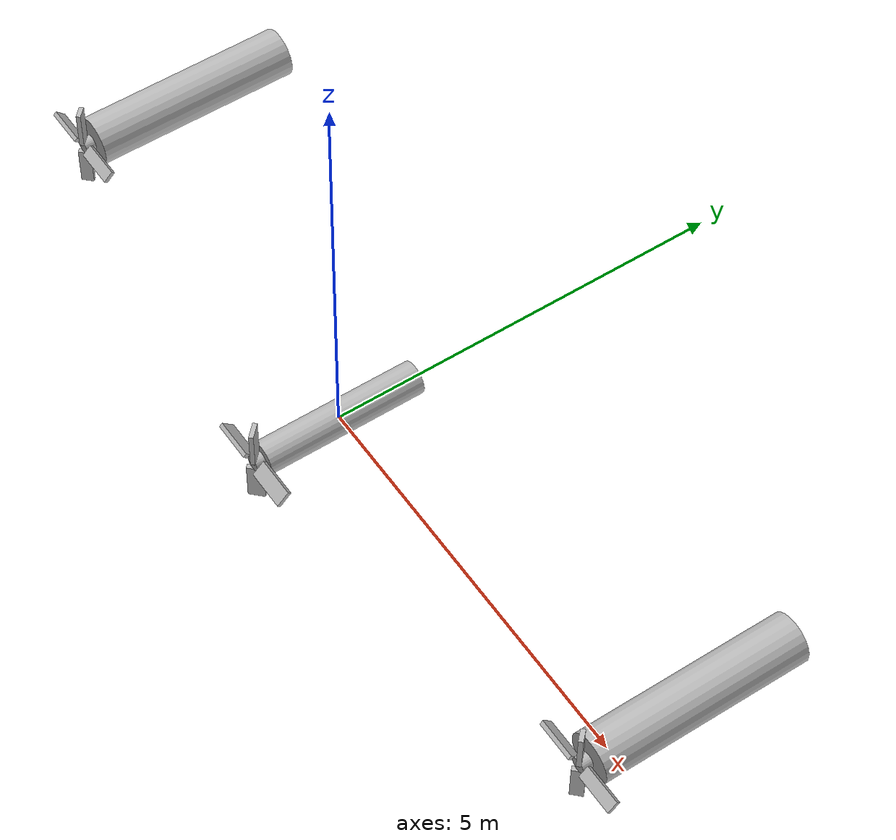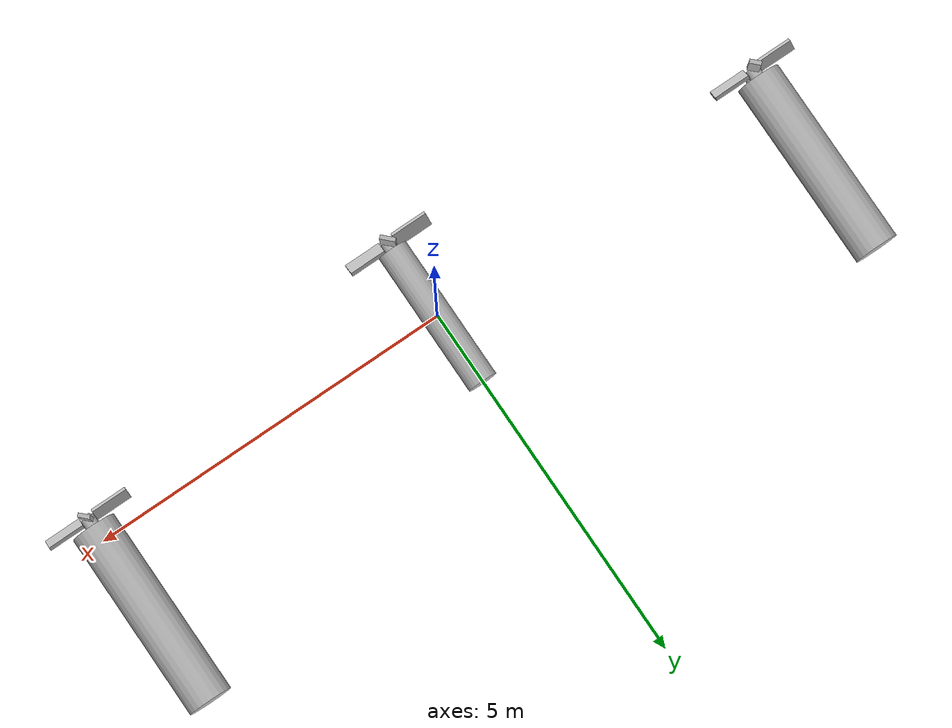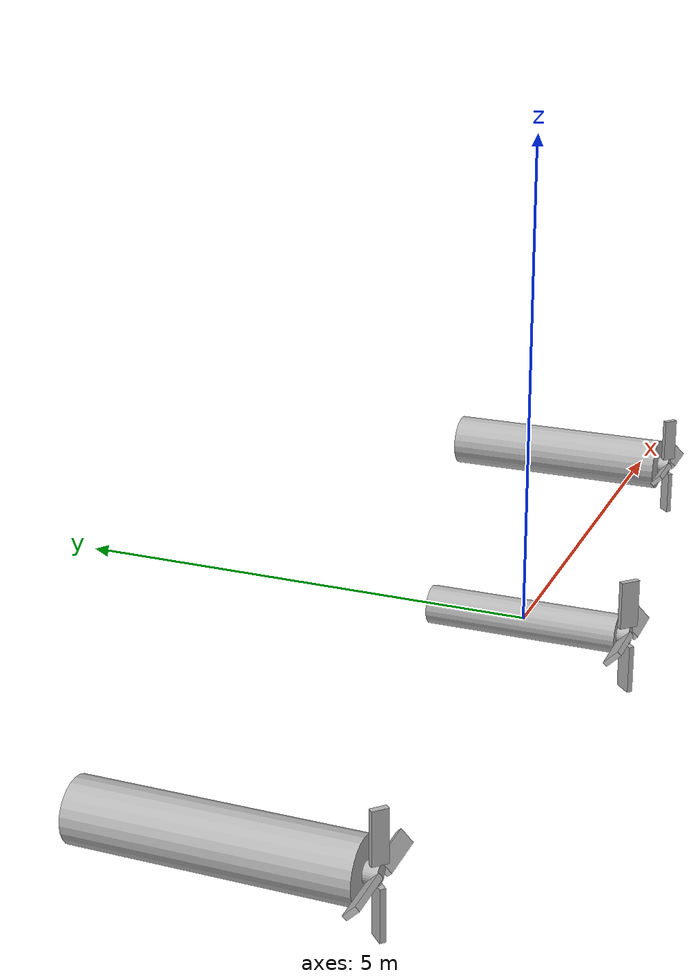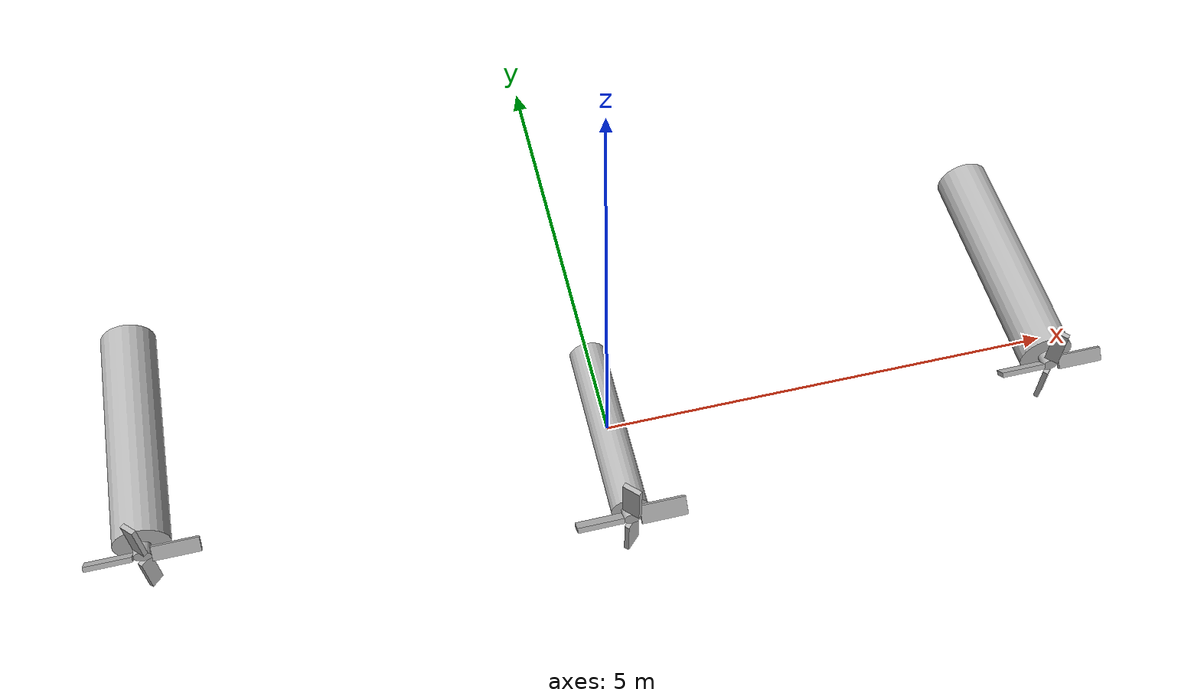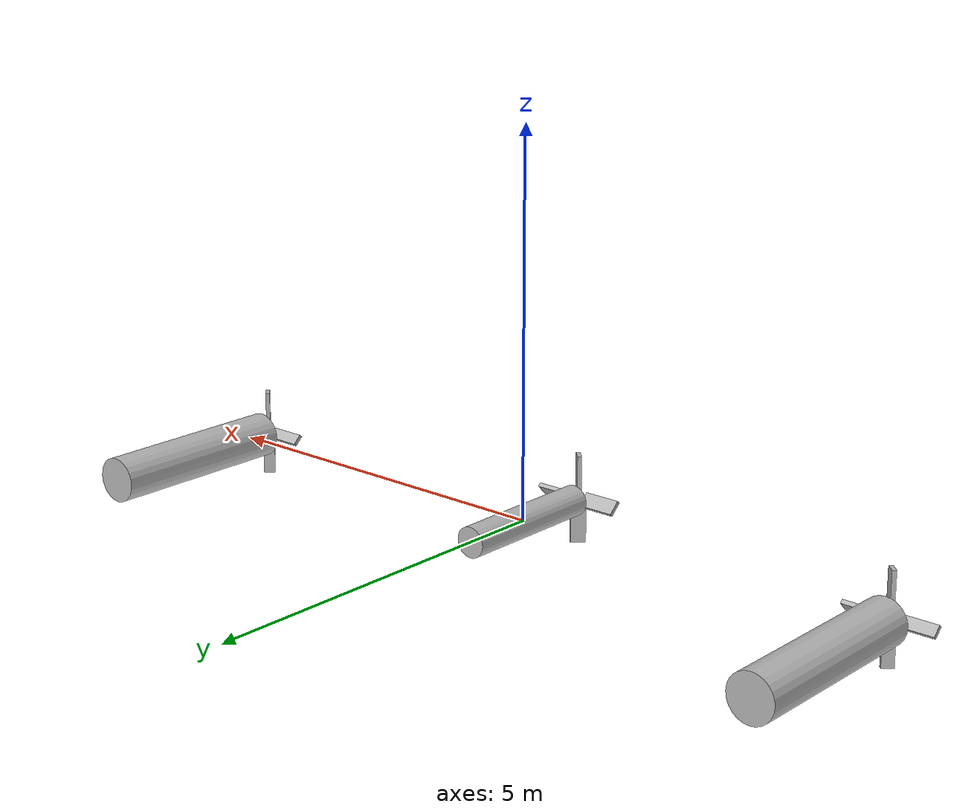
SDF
<?xml version="1.0" ?>
<sdf version="1.6">
  <world name="buoyancy">
    <plugin
      filename="gz-sim-apply-link-wrench-system"
      name="gz::sim::systems::ApplyLinkWrench">
    </plugin>

    <physics name="1ms" type="ode">
      <max_step_size>0.001</max_step_size>
      <real_time_factor>1.0</real_time_factor>
    </physics>
    <plugin
      filename="gz-sim-physics-system"
      name="gz::sim::systems::Physics">
    </plugin>
    <plugin
      filename="gz-sim-user-commands-system"
      name="gz::sim::systems::UserCommands">
    </plugin>
    <plugin
      filename="gz-sim-scene-broadcaster-system"
      name="gz::sim::systems::SceneBroadcaster">
    </plugin>
    <plugin
      filename="gz-sim-buoyancy-system"
      name="gz::sim::systems::Buoyancy">
      <uniform_fluid_density>1000</uniform_fluid_density>
    </plugin>

    <light type="directional" name="sun">
      <cast_shadows>true</cast_shadows>
      <pose>0 0 10 0 0 0</pose>
      <diffuse>1 1 1 1</diffuse>
      <specular>0.5 0.5 0.5 1</specular>
      <attenuation>
        <range>1000</range>
        <constant>0.9</constant>
        <linear>0.01</linear>
        <quadratic>0.001</quadratic>
      </attenuation>
      <direction>-0.5 0.1 -0.9</direction>
    </light>

    <model name='submarine'>
      <pose>0 0 0 1.5707963267948966 0 0</pose>
      <link name='body'>
        <pose>0 0 0 0 0 0</pose>
        <inertial>
          <mass>251.32741228718348</mass>
          <inertia>
            <ixx>86.28907821859966</ixx>
            <ixy>0</ixy>
            <ixz>0</ixz>
            <iyy>86.28907821859966</iyy>
            <iyz>0</iyz>
            <izz>5.026548245743671</izz>
          </inertia>
        </inertial>

        <visual name='body_visual'>
          <geometry>
            <cylinder>
              <radius>0.2</radius>
              <length>2</length>
            </cylinder>
          </geometry>
        </visual>
        <collision name='body_collision'>
          <geometry>
            <cylinder>
              <radius>0.2</radius>
              <length>2</length>
            </cylinder>
          </geometry>
        </collision>

        <visual name='spacer_visual'>
          <pose>0 0 1.05855 0 0 0</pose>
          <geometry>
            <cylinder>
              <radius>0.0933402</radius>
              <length>0.127211</length>
            </cylinder>
          </geometry>
        </visual>
      </link>

      <link name='propeller'>
        <pose>0 0 1.09 3.14159 0 0</pose>
        <inertial>
          <mass>21.820000000000004</mass>
          <inertia>
            <ixx>0.45999415237916674</ixx>
            <ixy>0</ixy>
            <ixz>0</ixz>
            <iyy>0.45999415237916674</iyy>
            <iyz>0</iyz>
            <izz>0.9091666666666668</izz>
          </inertia>
        </inertial>

        <visual name="blade1_visual">
          <pose>0.3433402 0.0 0 -0.7853981633974483 0 0.0</pose>
          <geometry>
            <box>
              <size>0.5 0.2 0.05455</size>
            </box>
          </geometry>
        </visual>
        <collision name="blade1_collision">
          <pose>0.3433402 0.0 0 -0.7853981633974483 0 0.0</pose>
          <geometry>
            <box>
              <size>0.5 0.2 0.05455</size>
            </box>
          </geometry>
        </collision>

        <visual name="blade2_visual">
          <pose>0.0 0.3433402 0 -0.7853981633974483 0 1.5707963267948966</pose>
          <geometry>
            <box>
              <size>0.5 0.2 0.05455</size>
            </box>
          </geometry>
        </visual>
        <collision name="blade2_collision">
          <pose>0.0 0.3433402 0 -0.7853981633974483 0 1.5707963267948966</pose>
          <geometry>
            <box>
              <size>0.5 0.2 0.05455</size>
            </box>
          </geometry>
        </collision>

        <visual name="blade3_visual">
          <pose>-0.3433402 -0.0 0 0.7853981633974483 0 0.0</pose>
          <geometry>
            <box>
              <size>0.5 0.2 0.05455</size>
            </box>
          </geometry>
        </visual>
        <collision name="blade3_collision">
          <pose>-0.3433402 -0.0 0 0.7853981633974483 0 0.0</pose>
          <geometry>
            <box>
              <size>0.5 0.2 0.05455</size>
            </box>
          </geometry>
        </collision>

        <visual name="blade4_visual">
          <pose>-0.0 -0.3433402 0 0.7853981633974483 0 1.5707963267948966</pose>
          <geometry>
            <box>
              <size>0.5 0.2 0.05455</size>
            </box>
          </geometry>
        </visual>
        <collision name="blade4_collision">
          <pose>-0.0 -0.3433402 0 0.7853981633974483 0 1.5707963267948966</pose>
          <geometry>
            <box>
              <size>0.5 0.2 0.05455</size>
            </box>
          </geometry>
        </collision>

      </link>

      <joint name='propeller_joint' type='revolute'>
        <parent>body</parent>
        <child>propeller</child>
        <axis>
          <xyz>0 0 1</xyz>
          <use_parent_model_frame>1</use_parent_model_frame>
          <limit>
            <lower>-1e+12</lower>
            <upper>1e+12</upper>
            <effort>-1</effort>
            <velocity>-1</velocity>
          </limit>
        </axis>
      </joint>

      <plugin
        filename="gz-sim-apply-joint-force-system"
        name="gz::sim::systems::ApplyJointForce">
        <joint_name>propeller_joint</joint_name>
      </plugin>

      <plugin
        filename="gz-sim-lift-drag-system"
        name="gz::sim::systems::LiftDrag">
        <air_density>1000</air_density>
        <cla>1.2535816618911175</cla>
        <cla_stall>-1.4326647564469914</cla_stall>
        <cda>0</cda>
        <cda_stall>1.4326647564469914</cda_stall>
        <alpha_stall>1.396</alpha_stall>
        <a0>0</a0>
        <area>0.27637</area>
        <upward>0 -0.7071067811865476 -0.7071067811865475</upward>
        <forward>0 -0.7071067811865475 0.7071067811865476</forward>
        <link_name>propeller</link_name>
        <cp>0.35 0 0</cp>
      </plugin>

      <plugin
        filename="gz-sim-lift-drag-system"
        name="gz::sim::systems::LiftDrag">
        <air_density>1000</air_density>
        <cla>1.2535816618911175</cla>
        <cla_stall>-1.4326647564469914</cla_stall>
        <cda>0</cda>
        <cda_stall>1.4326647564469914</cda_stall>
        <alpha_stall>1.396</alpha_stall>
        <a0>0</a0>
        <area>0.27637</area>
        <upward>-0.7071067811865475 0 -0.7071067811865476</upward>
        <forward>-0.7071067811865476 0 0.7071067811865475</forward>
        <link_name>propeller</link_name>
        <cp>0 -0.35 0</cp>
      </plugin>

      <plugin
        filename="gz-sim-lift-drag-system"
        name="gz::sim::systems::LiftDrag">

        <air_density>1000</air_density>
        <cla>1.2535816618911175</cla>
        <cla_stall>-1.4326647564469914</cla_stall>
        <cda>0</cda>
        <cda_stall>1.4326647564469914</cda_stall>
        <alpha_stall>1.396</alpha_stall>
        <a0>0</a0>
        <area>0.27637</area>
        <upward>0 0.7071067811865475 -0.7071067811865476</upward>
        <forward>0 -0.7071067811865476 -0.7071067811865475</forward>
        <link_name>propeller</link_name>
        <cp>-0.35 0 0</cp>
      </plugin>

      <plugin
        filename="gz-sim-lift-drag-system"
        name="gz::sim::systems::LiftDrag">

        <air_density>1000</air_density>
        <cla>1.2535816618911175</cla>
        <cla_stall>-1.4326647564469914</cla_stall>
        <cda>0</cda>
        <cda_stall>1.4326647564469914</cda_stall>
        <alpha_stall>1.396</alpha_stall>
        <a0>0</a0>
        <area>0.27637</area>
        <upward>0.7071067811865476 0 -0.7071067811865475</upward>
        <forward>0.7071067811865475 0 0.7071067811865476</forward>
        <link_name>propeller</link_name>
        <cp>0 0.35 0</cp>
      </plugin>
    </model>

    <!-- This model should sink -->
    <model name='submarine_sinking'>
      <pose>5 0 0 1.5707963267948966 0 0</pose>
      <link name='body'>
        <pose>0 0 -1.07935 0 0 0</pose>
        <inertial>
          <mass>1102.6990214100174</mass>
          <inertia>
            <ixx>645.9978433760353</ixx>
            <ixy>0</ixy>
            <ixz>0</ixz>
            <iyy>645.9978433760353</iyy>
            <iyz>0</iyz>
            <izz>49.62145596345078</izz>
          </inertia>
        </inertial>

        <visual name='body_visual'>
          <geometry>
            <cylinder>
              <radius>0.3</radius>
              <length>2.6</length>
            </cylinder>
          </geometry>
        </visual>
        <collision name='body_collision'>
          <geometry>
            <cylinder>
              <radius>0.3</radius>
              <length>2.6</length>
            </cylinder>
          </geometry>
        </collision>

        <visual name='spacer_visual'>
          <pose>0 0 1.378546 0 0 0</pose>
          <geometry>
            <cylinder>
              <radius>0.0933402</radius>
              <length>0.127211</length>
            </cylinder>
          </geometry>
        </visual>
      </link>

      <link name='propeller'>
        <pose>0 0 0.3455 3.14159 0 0</pose>
        <inertial>
          <mass>25.2312297</mass>
          <inertia>
            <ixx>0.5319073381913637</ixx>
            <ixy>0</ixy>
            <ixz>0</ixz>
            <iyy>0.5319073381913637</iyy>
            <iyz>0</iyz>
            <izz>1.0513012375</izz>
          </inertia>
        </inertial>

        <visual name="blade1_visual">
          <pose>0.3433402 0.0 0 -0.7853981633974483 0 0.0</pose>
          <geometry>
            <box>
              <size>0.5 0.154178 0.05455</size>
            </box>
          </geometry>
        </visual>
        <collision name="blade1_collision">
          <pose>0.3433402 0.0 0 -0.7853981633974483 0 0.0</pose>
          <geometry>
            <box>
              <size>0.5 0.154178 0.05455</size>
            </box>
          </geometry>
        </collision>

        <visual name="blade2_visual">
          <pose>0.0 0.3433402 0 -0.7853981633974483 0 1.5707963267948966</pose>
          <geometry>
            <box>
              <size>0.5 0.154178 0.05455</size>
            </box>
          </geometry>
        </visual>
        <collision name="blade2_collision">
          <pose>0.0 0.3433402 0 -0.7853981633974483 0 1.5707963267948966</pose>
          <geometry>
            <box>
              <size>0.5 0.154178 0.05455</size>
            </box>
          </geometry>
        </collision>

        <visual name="blade3_visual">
          <pose>-0.3433402 -0.0 0 0.7853981633974483 0 0.0</pose>
          <geometry>
            <box>
              <size>0.5 0.154178 0.05455</size>
            </box>
          </geometry>
        </visual>
        <collision name="blade3_collision">
          <pose>-0.3433402 -0.0 0 0.7853981633974483 0 0.0</pose>
          <geometry>
            <box>
              <size>0.5 0.154178 0.05455</size>
            </box>
          </geometry>
        </collision>

        <visual name="blade4_visual">
          <pose>-0.0 -0.3433402 0 0.7853981633974483 0 1.5707963267948966</pose>
          <geometry>
            <box>
              <size>0.5 0.154178 0.05455</size>
            </box>
          </geometry>
        </visual>
        <collision name="blade4_collision">
          <pose>-0.0 -0.3433402 0 -0.7853981633974483 0 1.5707963267948966</pose>
          <geometry>
            <box>
              <size>0.5 0.154178 0.05455</size>
            </box>
          </geometry>
        </collision>

      </link>

      <joint name='propeller_joint' type='revolute'>
        <parent>body</parent>
        <child>propeller</child>
        <axis>
          <xyz>0 0 1</xyz>
          <use_parent_model_frame>1</use_parent_model_frame>
          <limit>
            <lower>-1e+12</lower>
            <upper>1e+12</upper>
            <effort>-1</effort>
            <velocity>-1</velocity>
          </limit>
        </axis>
      </joint>
    </model>

    <!-- This model should float up -->
    <model name='submarine_buoyant'>
      <pose>-5 0 0 1.5707963267948966 0 0</pose>
      <link name='body'>
        <pose>0 0 -1.07935 0 0 0</pose>
        <inertial>
          <mass>367.5663404700058</mass>
          <inertia>
            <ixx>215.33261445867842</ixx>
            <ixy>0</ixy>
            <ixz>0</ixz>
            <iyy>215.33261445867842</iyy>
            <iyz>0</iyz>
            <izz>16.54048532115026</izz>
          </inertia>
        </inertial>

        <visual name='body_visual'>
          <geometry>
            <cylinder>
              <radius>0.3</radius>
              <length>2.6</length>
            </cylinder>
          </geometry>
        </visual>
        <collision name='body_collision'>
          <geometry>
            <cylinder>
              <radius>0.3</radius>
              <length>2.6</length>
            </cylinder>
          </geometry>
        </collision>

        <visual name='spacer_visual'>
          <pose>0 0 1.378546 0 0 0</pose>
          <geometry>
            <cylinder>
              <radius>0.0933402</radius>
              <length>0.127211</length>
            </cylinder>
          </geometry>
        </visual>
      </link>

      <link name='propeller'>
        <pose>0 0 0.3455 3.14159 0 0</pose>
        <inertial>
          <mass>8.410409900000001</mass>
          <inertia>
            <ixx>0.17730244606378792</ixx>
            <ixy>0</ixy>
            <ixz>0</ixz>
            <iyy>0.17730244606378792</iyy>
            <iyz>0</iyz>
            <izz>0.35043374583333337</izz>
          </inertia>
        </inertial>

        <visual name="blade1_visual">
          <pose>0.3433402 0.0 0 -0.7853981633974483 0 0.0</pose>
          <geometry>
            <box>
              <size>0.5 0.154178 0.05455</size>
            </box>
          </geometry>
        </visual>
        <collision name="blade1_collision">
          <pose>0.3433402 0.0 0 -0.7853981633974483 0 0.0</pose>
          <geometry>
            <box>
              <size>0.5 0.154178 0.05455</size>
            </box>
          </geometry>
        </collision>

        <visual name="blade2_visual">
          <pose>0.0 0.3433402 0 -0.7853981633974483 0 1.5707963267948966</pose>
          <geometry>
            <box>
              <size>0.5 0.154178 0.05455</size>
            </box>
          </geometry>
        </visual>
        <collision name="blade2_collision">
          <pose>0.0 0.3433402 0 -0.7853981633974483 0 1.5707963267948966</pose>
          <geometry>
            <box>
              <size>0.5 0.154178 0.05455</size>
            </box>
          </geometry>
        </collision>

        <visual name="blade3_visual">
          <pose>-0.3433402 -0.0 0 0.7853981633974483 0 0.0</pose>
          <geometry>
            <box>
              <size>0.5 0.154178 0.05455</size>
            </box>
          </geometry>
        </visual>
        <collision name="blade3_collision">
          <pose>-0.3433402 -0.0 0 0.7853981633974483 0 0.0</pose>
          <geometry>
            <box>
              <size>0.5 0.154178 0.05455</size>
            </box>
          </geometry>
        </collision>

        <visual name="blade4_visual">
          <pose>-0.0 -0.3433402 0 0.7853981633974483 0 1.5707963267948966</pose>
          <geometry>
            <box>
              <size>0.5 0.154178 0.05455</size>
            </box>
          </geometry>
        </visual>
        <collision name="blade4_collision">
          <pose>-0.0 -0.3433402 0 0.7853981633974483 0 1.5707963267948966</pose>
          <geometry>
            <box>
              <size>0.5 0.154178 0.05455</size>
            </box>
          </geometry>
        </collision>

      </link>

      <joint name='propeller_joint' type='revolute'>
        <parent>body</parent>
        <child>propeller</child>
        <axis>
          <xyz>0 0 1</xyz>
          <use_parent_model_frame>1</use_parent_model_frame>
          <limit>
            <lower>-1e+12</lower>
            <upper>1e+12</upper>
            <effort>-1</effort>
            <velocity>-1</velocity>
          </limit>
        </axis>
      </joint>
    </model>

  </world>
</sdf>
